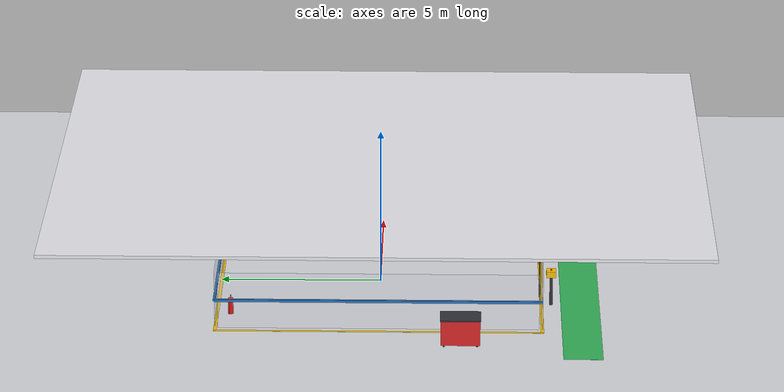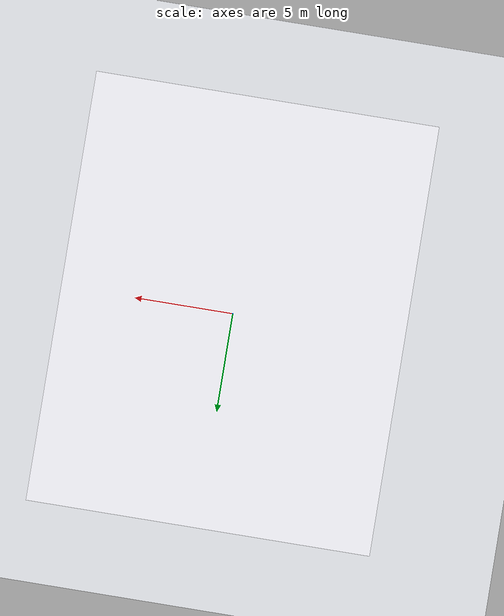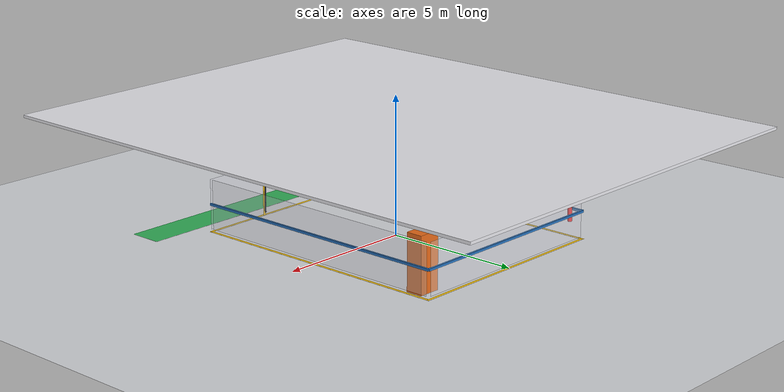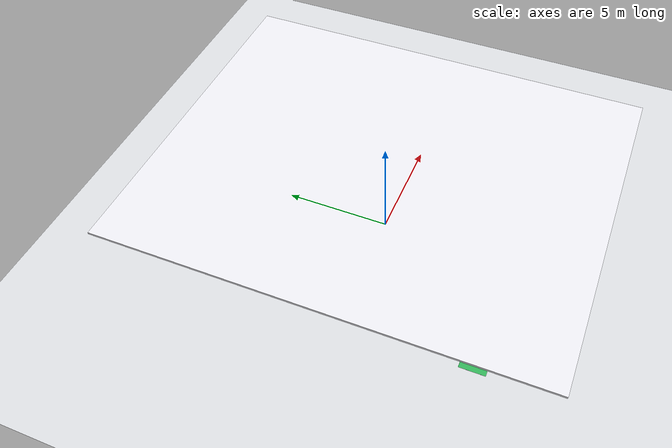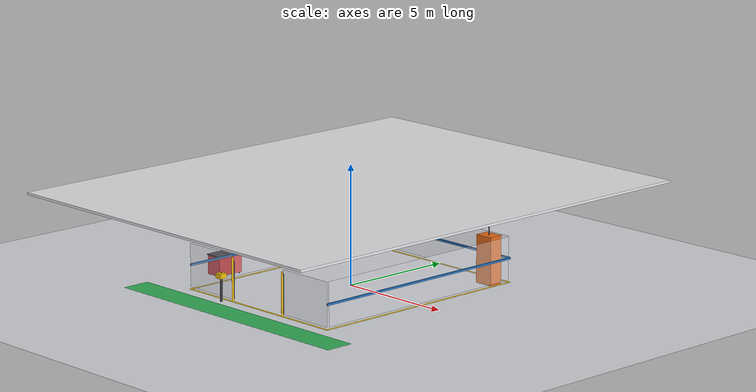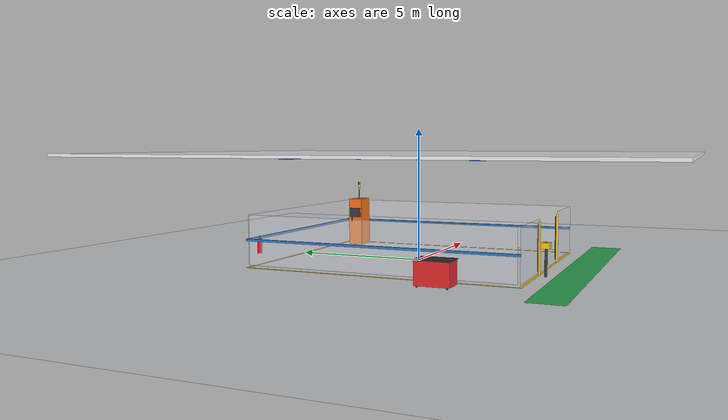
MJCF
<mujoco model="industrial_shop_floor">
    <compiler angle="radian" autolimits="true" />

    <!-- Calibrated Neutral Visual & Headlight Settings -->
    <visual>
        <global azimuth="-45" elevation="-25" />
        <headlight ambient="0.45 0.45 0.48" diffuse="0.50 0.50 0.52" specular="0.10 0.10 0.10" />
        <rgba haze="0.75 0.78 0.82 1" />
    </visual>

    <asset>
        <texture type="sky_box" builtin="gradient" rgb1="0.70 0.73 0.78" rgb2="0.45 0.48 0.52"
            width="512" height="512" />
        <texture name="floor_tex" type="2d" builtin="checker" rgb1="0.82 0.83 0.85"
            rgb2="0.88 0.89 0.9" width="512" height="512" />

        <!-- Industrial Materials -->
        <material name="epoxy_floor" texture="floor_tex" texrepeat="20 20" reflectance="0.08"
            specular="0.2" shininess="0.3" />
        <material name="ceiling_panel" rgba="0.92 0.92 0.94 1" reflectance="0.1" />
        <material name="rail_blue" rgba="0.1 0.35 0.75 1" specular="0.3" shininess="0.4" />
        <material name="safety_yellow" rgba="0.95 0.75 0.05 1" specular="0.3" shininess="0.5" />
        <material name="cabinet_orange" rgba="0.92 0.42 0.1 1" specular="0.3" shininess="0.4" />
        <material name="walkway_green" rgba="0.2 0.7 0.35 1" specular="0.1" />
        <material name="fence_frame" rgba="0.15 0.45 0.75 1" />
        <material name="fence_mesh" rgba="0.9 0.9 0.95 0.35" specular="0.4" shininess="0.5" />
        <material name="conduit_silver" rgba="0.75 0.78 0.82 1" specular="0.5" shininess="0.6" />
        <material name="tool_red" rgba="0.85 0.15 0.15 1" specular="0.4" shininess="0.5" />
        <material name="dark_metal" rgba="0.2 0.2 0.22 1" specular="0.3" shininess="0.4" />

        <!-- Emissive Signal Light Materials -->
        <material name="status_green" rgba="0.1 0.9 0.2 1" specular="0.6" shininess="0.8" />
        <material name="status_yellow" rgba="1 0.8 0 1" specular="0.6" shininess="0.8" />
        <material name="status_red" rgba="0.9 0.1 0.1 1" specular="0.6" shininess="0.8" />
        <material name="estop_red" rgba="0.9 0.05 0.05 1" specular="0.5" shininess="0.6" />
    </asset>

    <worldbody>
        <!-- Neutral Overhead Lighting Setup -->
        <light pos="0 0 3.8" dir="0 0 -1" diffuse="0.55 0.55 0.58" specular="0.12 0.12 0.12"
            castshadow="true" />
        <light pos="-3 3 3.8" dir="0 0 -1" diffuse="0.45 0.45 0.48" specular="0.10 0.10 0.10"
            castshadow="false" />
        <light pos="3 -3 3.8" dir="0 0 -1" diffuse="0.45 0.45 0.48" specular="0.10 0.10 0.10"
            castshadow="false" />

        <!-- Ceiling Suspended High-Bay Industrial LED Fixtures -->
        <geom name="bay_light_1" type="cylinder" size="0.3 0.04" pos="-2.5 -2.5 3.92"
            material="conduit_silver" />
        <geom name="bay_light_2" type="cylinder" size="0.3 0.04" pos="2.5 -2.5 3.92"
            material="conduit_silver" />
        <geom name="bay_light_3" type="cylinder" size="0.3 0.04" pos="-2.5 2.5 3.92"
            material="conduit_silver" />
        <geom name="bay_light_4" type="cylinder" size="0.3 0.04" pos="2.5 2.5 3.92"
            material="conduit_silver" />

        <!-- Epoxy Floor & Ceiling at 4000mm -->
        <geom name="factory_floor" type="plane" size="15 15 0.1" material="epoxy_floor" />
        <geom name="ceiling" type="box" size="8 10 0.05" pos="0 0 4.05" material="ceiling_panel" />

        <!-- Overhead Structural Steel Rails (Z=3.94m) for Ceiling-Mounted Robot -->
        <geom name="rail_main_C" type="box" size="0.25 5 0.06" pos="0 0 3.94" material="rail_blue" />
        <geom name="rail_main_L" type="box" size="0.15 5 0.06" pos="-2.5 0 3.94"
            material="rail_blue" />
        <geom name="rail_main_R" type="box" size="0.15 5 0.06" pos="2.5 0 3.94" material="rail_blue" />
        <geom name="rail_cross_N" type="box" size="4 0.15 0.06" pos="0 3.5 3.94"
            material="rail_blue" />
        <geom name="rail_cross_S" type="box" size="4 0.15 0.06" pos="0 -3.5 3.94"
            material="rail_blue" />

        <!-- Overhead Cable Trays & Pneumatic Supply Lines -->
        <geom name="cable_tray" type="box" size="0.1 5 0.02" pos="0.4 0 3.86"
            material="conduit_silver" />
        <geom name="air_line_pipe" type="cylinder" size="0.025 5" pos="-0.4 0 3.86"
            quat="0.7071 0.7071 0 0" material="conduit_silver" />

        <!-- Cell Boundaries & Green Pedestrian Walkway -->
        <geom name="cell_line_N" type="box" size="4.05 0.05 0.001" pos="0 5 0.001"
            material="safety_yellow" />
        <geom name="cell_line_S" type="box" size="4.05 0.05 0.001" pos="0 -5 0.001"
            material="safety_yellow" />
        <geom name="cell_line_E" type="box" size="0.05 5.05 0.001" pos="4 0 0.001"
            material="safety_yellow" />
        <geom name="cell_line_W" type="box" size="0.05 5.05 0.001" pos="-4 0 0.001"
            material="safety_yellow" />
        <geom name="pedestrian_walkway" type="box" size="6 0.6 0.001" pos="0 -6.2 0.001"
            material="walkway_green" />

        <!-- Perimeter Safety Fencing -->
        <geom name="fence_W_frame" type="box" size="0.04 5 0.04" pos="-4 0 1" material="fence_frame" />
        <geom name="fence_W_glass" type="box" size="0.01 4.9 0.9" pos="-4 0 1" material="fence_mesh" />
        <geom name="fence_E_frame" type="box" size="0.04 5 0.04" pos="4 0 1" material="fence_frame" />
        <geom name="fence_E_glass" type="box" size="0.01 4.9 0.9" pos="4 0 1" material="fence_mesh" />
        <geom name="fence_N_frame" type="box" size="4 0.04 0.04" pos="0 5 1" material="fence_frame" />
        <geom name="fence_N_glass" type="box" size="3.9 0.01 0.9" pos="0 5 1" material="fence_mesh" />
        <geom name="fence_S_L" type="box" size="1.25 0.01 0.9" pos="-2.75 -5 1"
            material="fence_mesh" />
        <geom name="fence_S_R" type="box" size="1.25 0.01 0.9" pos="2.75 -5 1" material="fence_mesh" />

        <!-- Safety Light Curtains (Optical Safety Barriers at Cell Entrance) -->
        <geom name="curtain_pole_L" type="cylinder" size="0.04 0.9" pos="-1.45 -5 0.9"
            material="safety_yellow" />
        <geom name="curtain_pole_R" type="cylinder" size="0.04 0.9" pos="1.45 -5 0.9"
            material="safety_yellow" />
        <geom name="curtain_sensor_L" type="box" size="0.02 0.02 0.8" pos="-1.45 -4.95 0.9"
            material="dark_metal" />
        <geom name="curtain_sensor_R" type="box" size="0.02 0.02 0.8" pos="1.45 -4.95 0.9"
            material="dark_metal" />

        <!-- Main Electrical Control Cabinet with Display -->
        <body name="main_control_cabinet" pos="3.5 4.3 0">
            <geom type="box" size="0.4 0.3 1" pos="0 0 1" material="cabinet_orange" />
            <geom type="box" size="0.02 0.25 0.2" pos="-0.41 0 1.4" material="dark_metal" />
            <geom type="cylinder" size="0.02 0.08" pos="-0.41 0.15 1.1" material="dark_metal" />
        </body>

        <!-- Industrial Stack Light / 3-Stage Signal Tower -->
        <body name="signal_tower" pos="3.5 4.3 2">
            <geom type="cylinder" size="0.02 0.2" pos="0 0 0.2" material="dark_metal" />
            <geom type="cylinder" size="0.04 0.05" pos="0 0 0.45" material="status_green" />
            <geom type="cylinder" size="0.04 0.05" pos="0 0 0.56" material="status_yellow" />
            <geom type="cylinder" size="0.04 0.05" pos="0 0 0.67" material="status_red" />
        </body>

        <!-- Operator Emergency Stop Station -->
        <body name="operator_pedestal" pos="-1.8 -5.3 0">
            <geom type="cylinder" size="0.05 0.5" pos="0 0 0.5" material="dark_metal" />
            <geom type="box" size="0.15 0.15 0.1" pos="0 0 1.05" material="safety_yellow" />
            <geom type="cylinder" size="0.03 0.02" pos="0 0 1.16" material="estop_red" />
        </body>

        <!-- Mobile Tool Cart / Maintenance Station -->
        <body name="tool_cart" pos="-4.8 -2.5 0">
            <geom type="box" size="0.35 0.6 0.4" pos="0 0 0.45" material="tool_red" />
            <geom type="box" size="0.37 0.62 0.02" pos="0 0 0.86" material="dark_metal" />
            <geom type="cylinder" size="0.03 0.04" pos="-0.3 0.5 0.04" material="dark_metal" />
            <geom type="cylinder" size="0.03 0.04" pos="0.3 0.5 0.04" material="dark_metal" />
            <geom type="cylinder" size="0.03 0.04" pos="-0.3 -0.5 0.04" material="dark_metal" />
            <geom type="cylinder" size="0.03 0.04" pos="0.3 -0.5 0.04" material="dark_metal" />
        </body>

        <!-- Fire Safety Station -->
        <body name="fire_station" pos="-3.95 4.5 0">
            <geom type="cylinder" size="0.08 0.25" pos="0 0 0.8" material="estop_red" />
            <geom type="cylinder" size="0.02 0.06" pos="0 0 1.1" material="dark_metal" />
        </body>
    </worldbody>
</mujoco>
